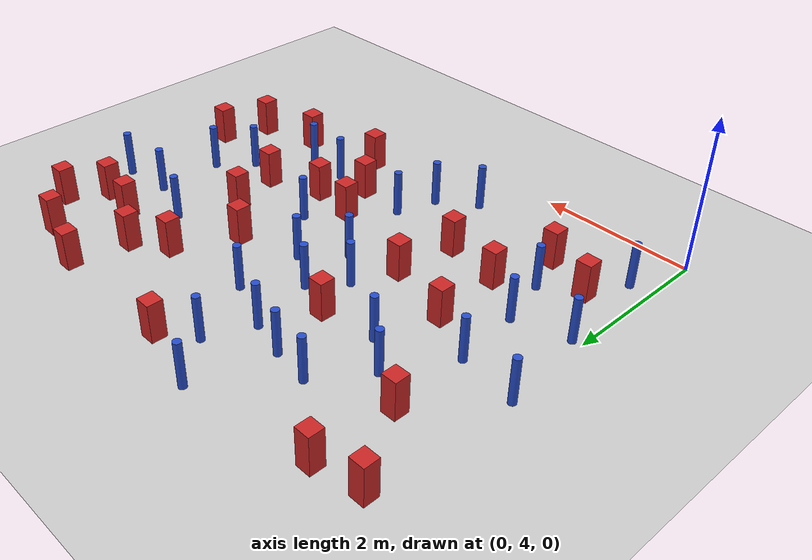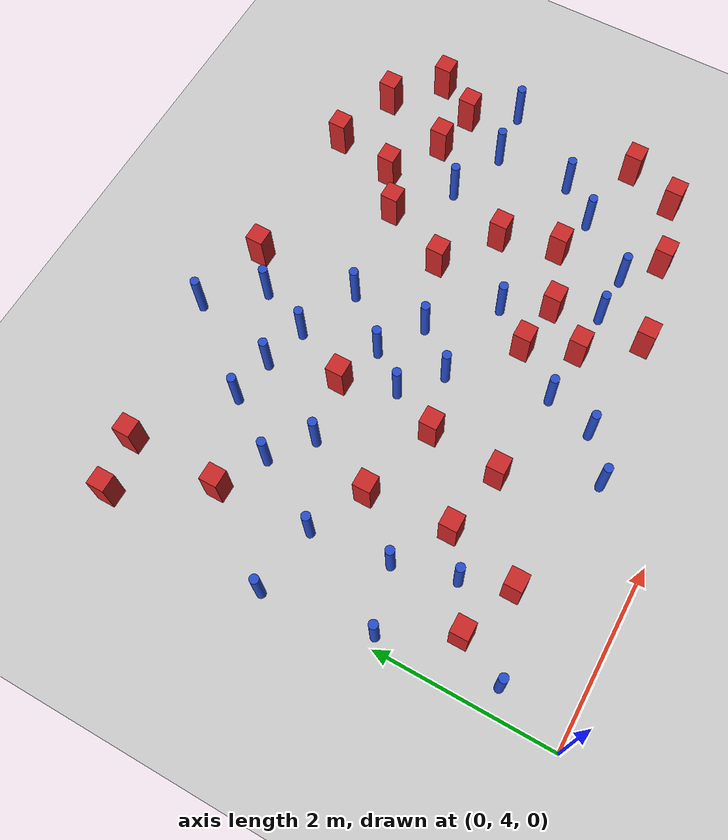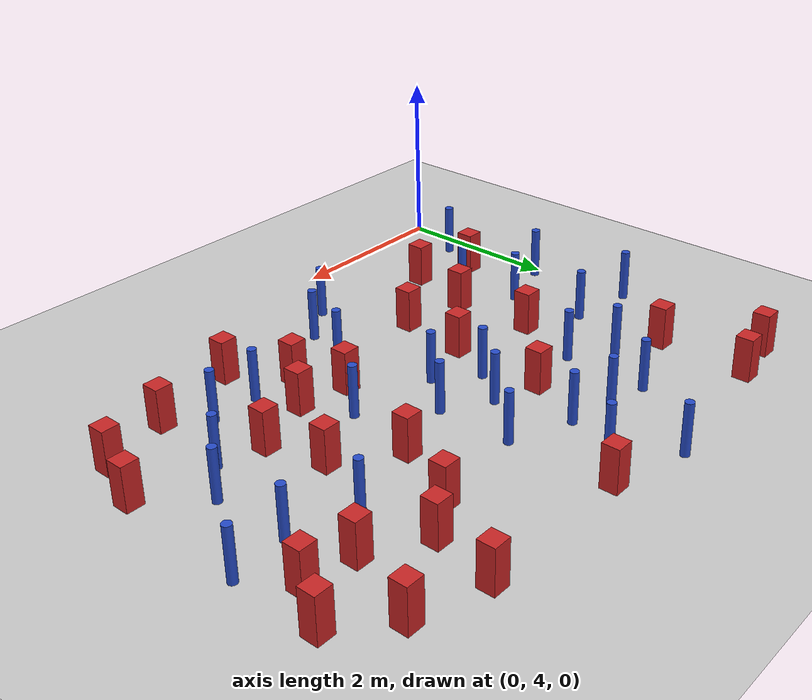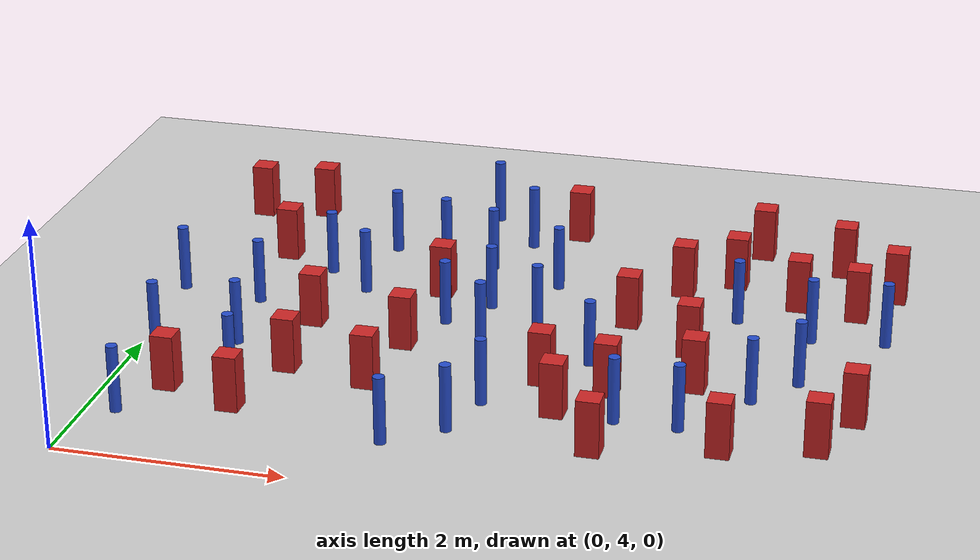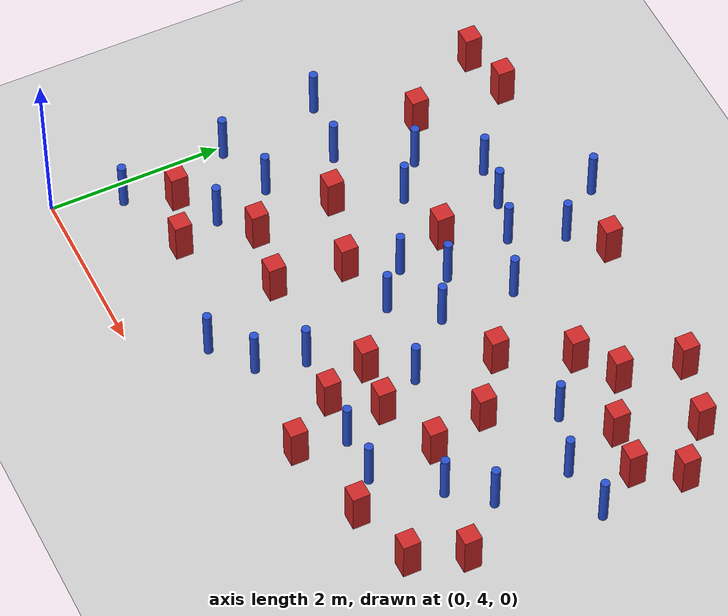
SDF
<sdf version="1.6">
 <world name="default">
  <model name="ground_plane">
   <static>1</static>
   <link name="link">
    <collision name="collision">
     <geometry><plane><normal>0 0 1</normal><size>100 100</size></plane></geometry>
     <surface><friction><ode><mu>100</mu><mu2>50</mu2></ode></friction></surface>
    </collision>
    <visual name="visual">
     <cast_shadows>0</cast_shadows>
     <geometry><plane><normal>0 0 1</normal><size>100 100</size></plane></geometry>
     <material>
      <ambient>1.0 1.0 1.0 1.0</ambient>
      <diffuse>0.8 0.8 0.8 1.0</diffuse>
      <specular>0.01 0.01 0.01 1.000000</specular>
     </material>
    </visual>
   </link>
  </model>
  <model name="square_post_obstacle1">
   <static>true</static>
   <pose>4.42170343339 8.20966445941 -6.11067671241e-07 -5.50515727128e-06 -8.79689657224e-07 2.37013304536e-05</pose>
   <link name="link">
    <pose>0 0 0.25 0 -0 0</pose>
    <inertial>
     <mass>100</mass>
     <inertia>
      <ixx>0.166667</ixx>
      <ixy>0</ixy>
      <ixz>0</ixz>
      <iyy>0.166667</iyy>
      <iyz>0</iyz>
      <izz>0.166667</izz>
     </inertia>
    </inertial>
    <collision name="collision"><geometry><box><size>.2 .2 .5</size></box></geometry></collision>
    <visual name="visual">
     <geometry><box><size>.2 .2 .5</size></box></geometry>
     <material>
      <script><name>Gazebo/Red</name><uri>file://media/materials/scripts/gazebo.material</uri></script>
     </material>
    </visual>
   </link>
  </model>
  <model name="square_post_obstacle2">
   <static>true</static>
   <pose>6.01994694953 8.0531341811 -6.11067671241e-07 -5.50515727128e-06 -8.79689657224e-07 2.37013304536e-05</pose>
   <link name="link">
    <pose>0 0 0.25 0 -0 0</pose>
    <inertial>
     <mass>100</mass>
     <inertia>
      <ixx>0.166667</ixx>
      <ixy>0</ixy>
      <ixz>0</ixz>
      <iyy>0.166667</iyy>
      <iyz>0</iyz>
      <izz>0.166667</izz>
     </inertia>
    </inertial>
    <collision name="collision"><geometry><box><size>.2 .2 .5</size></box></geometry></collision>
    <visual name="visual">
     <geometry><box><size>.2 .2 .5</size></box></geometry>
     <material>
      <script><name>Gazebo/Red</name><uri>file://media/materials/scripts/gazebo.material</uri></script>
     </material>
    </visual>
   </link>
  </model>
  <model name="square_post_obstacle13">
   <static>true</static>
   <pose>0.653260003176 8.16057962834 -6.11067671241e-07 -5.50515727128e-06 -8.79689657224e-07 2.37013304536e-05</pose>
   <link name="link">
    <pose>0 0 0.25 0 -0 0</pose>
    <inertial>
     <mass>100</mass>
     <inertia>
      <ixx>0.166667</ixx>
      <ixy>0</ixy>
      <ixz>0</ixz>
      <iyy>0.166667</iyy>
      <iyz>0</iyz>
      <izz>0.166667</izz>
     </inertia>
    </inertial>
    <collision name="collision"><geometry><box><size>.2 .2 .5</size></box></geometry></collision>
    <visual name="visual">
     <geometry><box><size>.2 .2 .5</size></box></geometry>
     <material>
      <script><name>Gazebo/Red</name><uri>file://media/materials/scripts/gazebo.material</uri></script>
     </material>
    </visual>
   </link>
  </model>
  <model name="pole_obstacle12">
   <static>true</static>
   <pose>3.17359752817 5.62223847648 -9.47619616065e-06 5.49618799738e-07 2.3631041406e-07 -1.55090534801e-07</pose>
   <link name="link">
    <pose>0 0 0.3 0 -0 0</pose>
    <inertial>
     <mass>1</mass>
     <inertia><ixx>0.145833</ixx><ixy>0</ixy><ixz>0</ixz><iyy>0.145833</iyy><iyz>0</iyz><izz>0.125</izz></inertia>
    </inertial>
    <collision name="collision">
     <geometry><cylinder><radius>0.05</radius><length>.6</length></cylinder></geometry>
    </collision>
    <visual name="visual">
     <geometry><cylinder><radius>0.05</radius><length>.6</length></cylinder></geometry>
     <material>
      <script><name>Gazebo/Blue</name><uri>file://media/materials/scripts/gazebo.material</uri></script>
     </material>
    </visual>
   </link>
  </model>
  <model name="pole_obstacle13">
   <static>true</static>
   <pose>0.804186072781 6.23391426051 -9.47619616065e-06 5.49618799737e-07 2.36310414065e-07 -1.55090534796e-07</pose>
   <link name="link">
    <pose>0 0 0.3 0 -0 0</pose>
    <inertial>
     <mass>1</mass>
     <inertia><ixx>0.145833</ixx><ixy>0</ixy><ixz>0</ixz><iyy>0.145833</iyy><iyz>0</iyz><izz>0.125</izz></inertia>
    </inertial>
    <collision name="collision">
     <geometry><cylinder><radius>0.05</radius><length>.6</length></cylinder></geometry>
    </collision>
    <visual name="visual">
     <geometry><cylinder><radius>0.05</radius><length>.6</length></cylinder></geometry>
     <material>
      <script><name>Gazebo/Blue</name><uri>file://media/materials/scripts/gazebo.material</uri></script>
     </material>
    </visual>
   </link>
  </model>
  <model name="square_post_obstacle25">
   <static>true</static>
   <pose>5.0078383888 9.22539712118 -6.11067671241e-07 -5.50515727128e-06 -8.79689657224e-07 2.37013304536e-05</pose>
   <link name="link">
    <pose>0 0 0.25 0 -0 0</pose>
    <inertial>
     <mass>100</mass>
     <inertia>
      <ixx>0.166667</ixx>
      <ixy>0</ixy>
      <ixz>0</ixz>
      <iyy>0.166667</iyy>
      <iyz>0</iyz>
      <izz>0.166667</izz>
     </inertia>
    </inertial>
    <collision name="collision"><geometry><box><size>.2 .2 .5</size></box></geometry></collision>
    <visual name="visual">
     <geometry><box><size>.2 .2 .5</size></box></geometry>
     <material>
      <script><name>Gazebo/Red</name><uri>file://media/materials/scripts/gazebo.material</uri></script>
     </material>
    </visual>
   </link>
  </model>
  <model name="square_post_obstacle30">
   <static>true</static>
   <pose>6.23661159585 6.02981420961 -6.11067671241e-07 -5.50515727128e-06 -8.79689657224e-07 2.37013304536e-05</pose>
   <link name="link">
    <pose>0 0 0.25 0 -0 0</pose>
    <inertial>
     <mass>100</mass>
     <inertia>
      <ixx>0.166667</ixx>
      <ixy>0</ixy>
      <ixz>0</ixz>
      <iyy>0.166667</iyy>
      <iyz>0</iyz>
      <izz>0.166667</izz>
     </inertia>
    </inertial>
    <collision name="collision"><geometry><box><size>.2 .2 .5</size></box></geometry></collision>
    <visual name="visual">
     <geometry><box><size>.2 .2 .5</size></box></geometry>
     <material>
      <script><name>Gazebo/Red</name><uri>file://media/materials/scripts/gazebo.material</uri></script>
     </material>
    </visual>
   </link>
  </model>
  <model name="pole_obstacle20">
   <static>true</static>
   <pose>0.266189733101 4.75550896583 -9.47619616065e-06 5.49618799737e-07 2.36310414067e-07 -1.55090534795e-07</pose>
   <link name="link">
    <pose>0 0 0.3 0 -0 0</pose>
    <inertial>
     <mass>1</mass>
     <inertia><ixx>0.145833</ixx><ixy>0</ixy><ixz>0</ixz><iyy>0.145833</iyy><iyz>0</iyz><izz>0.125</izz></inertia>
    </inertial>
    <collision name="collision">
     <geometry><cylinder><radius>0.05</radius><length>.6</length></cylinder></geometry>
    </collision>
    <visual name="visual">
     <geometry><cylinder><radius>0.05</radius><length>.6</length></cylinder></geometry>
     <material>
      <script><name>Gazebo/Blue</name><uri>file://media/materials/scripts/gazebo.material</uri></script>
     </material>
    </visual>
   </link>
  </model>
  <model name="pole_obstacle26">
   <static>true</static>
   <pose>0.708758255709 7.10985268968 -9.47619616065e-06 5.49618799737e-07 2.36310414065e-07 -1.55090534796e-07</pose>
   <link name="link">
    <pose>0 0 0.3 0 -0 0</pose>
    <inertial>
     <mass>1</mass>
     <inertia><ixx>0.145833</ixx><ixy>0</ixy><ixz>0</ixz><iyy>0.145833</iyy><iyz>0</iyz><izz>0.125</izz></inertia>
    </inertial>
    <collision name="collision">
     <geometry><cylinder><radius>0.05</radius><length>.6</length></cylinder></geometry>
    </collision>
    <visual name="visual">
     <geometry><cylinder><radius>0.05</radius><length>.6</length></cylinder></geometry>
     <material>
      <script><name>Gazebo/Blue</name><uri>file://media/materials/scripts/gazebo.material</uri></script>
     </material>
    </visual>
   </link>
  </model>
  <model name="pole_obstacle28">
   <static>true</static>
   <pose>2.83587387371 8.92061249869 -9.4761961606e-06 5.49618799729e-07 2.36310414e-07 -1.55090534824e-07</pose>
   <link name="link">
    <pose>0 0 0.3 0 -0 0</pose>
    <inertial>
     <mass>1</mass>
     <inertia><ixx>0.145833</ixx><ixy>0</ixy><ixz>0</ixz><iyy>0.145833</iyy><iyz>0</iyz><izz>0.125</izz></inertia>
    </inertial>
    <collision name="collision">
     <geometry><cylinder><radius>0.05</radius><length>.6</length></cylinder></geometry>
    </collision>
    <visual name="visual">
     <geometry><cylinder><radius>0.05</radius><length>.6</length></cylinder></geometry>
     <material>
      <script><name>Gazebo/Blue</name><uri>file://media/materials/scripts/gazebo.material</uri></script>
     </material>
    </visual>
   </link>
  </model>
  <model name="pole_obstacle29">
   <static>true</static>
   <pose>3.01667559415 5.08814130238 -9.47619616065e-06 5.49618799738e-07 2.3631041406e-07 -1.55090534801e-07</pose>
   <link name="link">
    <pose>0 0 0.3 0 -0 0</pose>
    <inertial>
     <mass>1</mass>
     <inertia><ixx>0.145833</ixx><ixy>0</ixy><ixz>0</ixz><iyy>0.145833</iyy><iyz>0</iyz><izz>0.125</izz></inertia>
    </inertial>
    <collision name="collision">
     <geometry><cylinder><radius>0.05</radius><length>.6</length></cylinder></geometry>
    </collision>
    <visual name="visual">
     <geometry><cylinder><radius>0.05</radius><length>.6</length></cylinder></geometry>
     <material>
      <script><name>Gazebo/Blue</name><uri>file://media/materials/scripts/gazebo.material</uri></script>
     </material>
    </visual>
   </link>
  </model>
  <model name="pole_obstacle30">
   <static>true</static>
   <pose>2.59084528699 8.32856327838 -9.4761961606e-06 5.49618799729e-07 2.36310414e-07 -1.55090534824e-07</pose>
   <link name="link">
    <pose>0 0 0.3 0 -0 0</pose>
    <inertial>
     <mass>1</mass>
     <inertia><ixx>0.145833</ixx><ixy>0</ixy><ixz>0</ixz><iyy>0.145833</iyy><iyz>0</iyz><izz>0.125</izz></inertia>
    </inertial>
    <collision name="collision">
     <geometry><cylinder><radius>0.05</radius><length>.6</length></cylinder></geometry>
    </collision>
    <visual name="visual">
     <geometry><cylinder><radius>0.05</radius><length>.6</length></cylinder></geometry>
     <material>
      <script><name>Gazebo/Blue</name><uri>file://media/materials/scripts/gazebo.material</uri></script>
     </material>
    </visual>
   </link>
  </model>
  <model name="pole_obstacle35">
   <static>true</static>
   <pose>3.28346376553 7.18093398653 -9.47619616065e-06 5.49618799738e-07 2.3631041406e-07 -1.55090534801e-07</pose>
   <link name="link">
    <pose>0 0 0.3 0 -0 0</pose>
    <inertial>
     <mass>1</mass>
     <inertia><ixx>0.145833</ixx><ixy>0</ixy><ixz>0</ixz><iyy>0.145833</iyy><iyz>0</iyz><izz>0.125</izz></inertia>
    </inertial>
    <collision name="collision">
     <geometry><cylinder><radius>0.05</radius><length>.6</length></cylinder></geometry>
    </collision>
    <visual name="visual">
     <geometry><cylinder><radius>0.05</radius><length>.6</length></cylinder></geometry>
     <material>
      <script><name>Gazebo/Blue</name><uri>file://media/materials/scripts/gazebo.material</uri></script>
     </material>
    </visual>
   </link>
  </model>
  <model name="square_post_obstacle39">
   <static>true</static>
   <pose>2.13389853774 5.72635591819 -6.11067671241e-07 -5.50515727128e-06 -8.79689657224e-07 2.37013304536e-05</pose>
   <link name="link">
    <pose>0 0 0.25 0 -0 0</pose>
    <inertial>
     <mass>100</mass>
     <inertia>
      <ixx>0.166667</ixx>
      <ixy>0</ixy>
      <ixz>0</ixz>
      <iyy>0.166667</iyy>
      <iyz>0</iyz>
      <izz>0.166667</izz>
     </inertia>
    </inertial>
    <collision name="collision"><geometry><box><size>.2 .2 .5</size></box></geometry></collision>
    <visual name="visual">
     <geometry><box><size>.2 .2 .5</size></box></geometry>
     <material>
      <script><name>Gazebo/Red</name><uri>file://media/materials/scripts/gazebo.material</uri></script>
     </material>
    </visual>
   </link>
  </model>
  <model name="square_post_obstacle42">
   <static>true</static>
   <pose>3.57118035479 6.13761750591 -6.11067671241e-07 -5.50515727128e-06 -8.79689657224e-07 2.37013304536e-05</pose>
   <link name="link">
    <pose>0 0 0.25 0 -0 0</pose>
    <inertial>
     <mass>100</mass>
     <inertia>
      <ixx>0.166667</ixx>
      <ixy>0</ixy>
      <ixz>0</ixz>
      <iyy>0.166667</iyy>
      <iyz>0</iyz>
      <izz>0.166667</izz>
     </inertia>
    </inertial>
    <collision name="collision"><geometry><box><size>.2 .2 .5</size></box></geometry></collision>
    <visual name="visual">
     <geometry><box><size>.2 .2 .5</size></box></geometry>
     <material>
      <script><name>Gazebo/Red</name><uri>file://media/materials/scripts/gazebo.material</uri></script>
     </material>
    </visual>
   </link>
  </model>
  <model name="square_post_obstacle48">
   <static>true</static>
   <pose>0.0815116910613 9.109824242 -6.11067671241e-07 -5.50515727128e-06 -8.79689657224e-07 2.37013304536e-05</pose>
   <link name="link">
    <pose>0 0 0.25 0 -0 0</pose>
    <inertial>
     <mass>100</mass>
     <inertia>
      <ixx>0.166667</ixx>
      <ixy>0</ixy>
      <ixz>0</ixz>
      <iyy>0.166667</iyy>
      <iyz>0</iyz>
      <izz>0.166667</izz>
     </inertia>
    </inertial>
    <collision name="collision"><geometry><box><size>.2 .2 .5</size></box></geometry></collision>
    <visual name="visual">
     <geometry><box><size>.2 .2 .5</size></box></geometry>
     <material>
      <script><name>Gazebo/Red</name><uri>file://media/materials/scripts/gazebo.material</uri></script>
     </material>
    </visual>
   </link>
  </model>
  <model name="square_post_obstacle50">
   <static>true</static>
   <pose>1.38715881285 5.8652911579 -6.11067671241e-07 -5.50515727128e-06 -8.79689657224e-07 2.37013304536e-05</pose>
   <link name="link">
    <pose>0 0 0.25 0 -0 0</pose>
    <inertial>
     <mass>100</mass>
     <inertia>
      <ixx>0.166667</ixx>
      <ixy>0</ixy>
      <ixz>0</ixz>
      <iyy>0.166667</iyy>
      <iyz>0</iyz>
      <izz>0.166667</izz>
     </inertia>
    </inertial>
    <collision name="collision"><geometry><box><size>.2 .2 .5</size></box></geometry></collision>
    <visual name="visual">
     <geometry><box><size>.2 .2 .5</size></box></geometry>
     <material>
      <script><name>Gazebo/Red</name><uri>file://media/materials/scripts/gazebo.material</uri></script>
     </material>
    </visual>
   </link>
  </model>
  <model name="pole_obstacle57">
   <static>true</static>
   <pose>3.27850187263 8.05125117773 -9.4761961606e-06 5.49618799729e-07 2.36310414e-07 -1.55090534824e-07</pose>
   <link name="link">
    <pose>0 0 0.3 0 -0 0</pose>
    <inertial>
     <mass>1</mass>
     <inertia><ixx>0.145833</ixx><ixy>0</ixy><ixz>0</ixz><iyy>0.145833</iyy><iyz>0</iyz><izz>0.125</izz></inertia>
    </inertial>
    <collision name="collision">
     <geometry><cylinder><radius>0.05</radius><length>.6</length></cylinder></geometry>
    </collision>
    <visual name="visual">
     <geometry><cylinder><radius>0.05</radius><length>.6</length></cylinder></geometry>
     <material>
      <script><name>Gazebo/Blue</name><uri>file://media/materials/scripts/gazebo.material</uri></script>
     </material>
    </visual>
   </link>
  </model>
  <model name="square_post_obstacle65">
   <static>true</static>
   <pose>1.16264006123 5.05028360608 -6.11067671241e-07 -5.50515727128e-06 -8.79689657224e-07 2.37013304536e-05</pose>
   <link name="link">
    <pose>0 0 0.25 0 -0 0</pose>
    <inertial>
     <mass>100</mass>
     <inertia>
      <ixx>0.166667</ixx>
      <ixy>0</ixy>
      <ixz>0</ixz>
      <iyy>0.166667</iyy>
      <iyz>0</iyz>
      <izz>0.166667</izz>
     </inertia>
    </inertial>
    <collision name="collision"><geometry><box><size>.2 .2 .5</size></box></geometry></collision>
    <visual name="visual">
     <geometry><box><size>.2 .2 .5</size></box></geometry>
     <material>
      <script><name>Gazebo/Red</name><uri>file://media/materials/scripts/gazebo.material</uri></script>
     </material>
    </visual>
   </link>
  </model>
  <model name="square_post_obstacle70">
   <static>true</static>
   <pose>6.01328946178 5.44240281436 -6.11067671241e-07 -5.50515727128e-06 -8.79689657224e-07 2.37013304536e-05</pose>
   <link name="link">
    <pose>0 0 0.25 0 -0 0</pose>
    <inertial>
     <mass>100</mass>
     <inertia>
      <ixx>0.166667</ixx>
      <ixy>0</ixy>
      <ixz>0</ixz>
      <iyy>0.166667</iyy>
      <iyz>0</iyz>
      <izz>0.166667</izz>
     </inertia>
    </inertial>
    <collision name="collision"><geometry><box><size>.2 .2 .5</size></box></geometry></collision>
    <visual name="visual">
     <geometry><box><size>.2 .2 .5</size></box></geometry>
     <material>
      <script><name>Gazebo/Red</name><uri>file://media/materials/scripts/gazebo.material</uri></script>
     </material>
    </visual>
   </link>
  </model>
  <model name="pole_obstacle76">
   <static>true</static>
   <pose>2.46784365787 7.07686960378 -9.47619616065e-06 5.49618799738e-07 2.3631041406e-07 -1.55090534801e-07</pose>
   <link name="link">
    <pose>0 0 0.3 0 -0 0</pose>
    <inertial>
     <mass>1</mass>
     <inertia><ixx>0.145833</ixx><ixy>0</ixy><ixz>0</ixz><iyy>0.145833</iyy><iyz>0</iyz><izz>0.125</izz></inertia>
    </inertial>
    <collision name="collision">
     <geometry><cylinder><radius>0.05</radius><length>.6</length></cylinder></geometry>
    </collision>
    <visual name="visual">
     <geometry><cylinder><radius>0.05</radius><length>.6</length></cylinder></geometry>
     <material>
      <script><name>Gazebo/Blue</name><uri>file://media/materials/scripts/gazebo.material</uri></script>
     </material>
    </visual>
   </link>
  </model>
  <model name="pole_obstacle77">
   <static>true</static>
   <pose>2.36346654039 9.48029306016 -9.4761961606e-06 5.49618799729e-07 2.36310414e-07 -1.55090534824e-07</pose>
   <link name="link">
    <pose>0 0 0.3 0 -0 0</pose>
    <inertial>
     <mass>1</mass>
     <inertia><ixx>0.145833</ixx><ixy>0</ixy><ixz>0</ixz><iyy>0.145833</iyy><iyz>0</iyz><izz>0.125</izz></inertia>
    </inertial>
    <collision name="collision">
     <geometry><cylinder><radius>0.05</radius><length>.6</length></cylinder></geometry>
    </collision>
    <visual name="visual">
     <geometry><cylinder><radius>0.05</radius><length>.6</length></cylinder></geometry>
     <material>
      <script><name>Gazebo/Blue</name><uri>file://media/materials/scripts/gazebo.material</uri></script>
     </material>
    </visual>
   </link>
  </model>
  <model name="pole_obstacle78">
   <static>true</static>
   <pose>0.118712925427 6.02861134054 -9.47619616065e-06 5.49618799737e-07 2.36310414061e-07 -1.550905348e-07</pose>
   <link name="link">
    <pose>0 0 0.3 0 -0 0</pose>
    <inertial>
     <mass>1</mass>
     <inertia><ixx>0.145833</ixx><ixy>0</ixy><ixz>0</ixz><iyy>0.145833</iyy><iyz>0</iyz><izz>0.125</izz></inertia>
    </inertial>
    <collision name="collision">
     <geometry><cylinder><radius>0.05</radius><length>.6</length></cylinder></geometry>
    </collision>
    <visual name="visual">
     <geometry><cylinder><radius>0.05</radius><length>.6</length></cylinder></geometry>
     <material>
      <script><name>Gazebo/Blue</name><uri>file://media/materials/scripts/gazebo.material</uri></script>
     </material>
    </visual>
   </link>
  </model>
  <model name="square_post_obstacle78">
   <static>true</static>
   <pose>3.23161104398 9.23865303624 -6.11067671241e-07 -5.50515727128e-06 -8.79689657224e-07 2.37013304536e-05</pose>
   <link name="link">
    <pose>0 0 0.25 0 -0 0</pose>
    <inertial>
     <mass>100</mass>
     <inertia>
      <ixx>0.166667</ixx>
      <ixy>0</ixy>
      <ixz>0</ixz>
      <iyy>0.166667</iyy>
      <iyz>0</iyz>
      <izz>0.166667</izz>
     </inertia>
    </inertial>
    <collision name="collision"><geometry><box><size>.2 .2 .5</size></box></geometry></collision>
    <visual name="visual">
     <geometry><box><size>.2 .2 .5</size></box></geometry>
     <material>
      <script><name>Gazebo/Red</name><uri>file://media/materials/scripts/gazebo.material</uri></script>
     </material>
    </visual>
   </link>
  </model>
  <model name="pole_obstacle88">
   <static>true</static>
   <pose>2.55857978694 4.74817105469 -9.47619616065e-06 5.49618799738e-07 2.3631041406e-07 -1.55090534801e-07</pose>
   <link name="link">
    <pose>0 0 0.3 0 -0 0</pose>
    <inertial>
     <mass>1</mass>
     <inertia><ixx>0.145833</ixx><ixy>0</ixy><ixz>0</ixz><iyy>0.145833</iyy><iyz>0</iyz><izz>0.125</izz></inertia>
    </inertial>
    <collision name="collision">
     <geometry><cylinder><radius>0.05</radius><length>.6</length></cylinder></geometry>
    </collision>
    <visual name="visual">
     <geometry><cylinder><radius>0.05</radius><length>.6</length></cylinder></geometry>
     <material>
      <script><name>Gazebo/Blue</name><uri>file://media/materials/scripts/gazebo.material</uri></script>
     </material>
    </visual>
   </link>
  </model>
  <model name="pole_obstacle98">
   <static>true</static>
   <pose>2.78698013193 7.49306694767 -9.47619616065e-06 5.49618799738e-07 2.3631041406e-07 -1.55090534801e-07</pose>
   <link name="link">
    <pose>0 0 0.3 0 -0 0</pose>
    <inertial>
     <mass>1</mass>
     <inertia><ixx>0.145833</ixx><ixy>0</ixy><ixz>0</ixz><iyy>0.145833</iyy><iyz>0</iyz><izz>0.125</izz></inertia>
    </inertial>
    <collision name="collision">
     <geometry><cylinder><radius>0.05</radius><length>.6</length></cylinder></geometry>
    </collision>
    <visual name="visual">
     <geometry><cylinder><radius>0.05</radius><length>.6</length></cylinder></geometry>
     <material>
      <script><name>Gazebo/Blue</name><uri>file://media/materials/scripts/gazebo.material</uri></script>
     </material>
    </visual>
   </link>
  </model>
  <model name="pole_obstacle101">
   <static>true</static>
   <pose>5.68316240243 7.47515483368 -9.47619616065e-06 5.49618799737e-07 2.36310414037e-07 -1.55090534814e-07</pose>
   <link name="link">
    <pose>0 0 0.3 0 -0 0</pose>
    <inertial>
     <mass>1</mass>
     <inertia><ixx>0.145833</ixx><ixy>0</ixy><ixz>0</ixz><iyy>0.145833</iyy><iyz>0</iyz><izz>0.125</izz></inertia>
    </inertial>
    <collision name="collision">
     <geometry><cylinder><radius>0.05</radius><length>.6</length></cylinder></geometry>
    </collision>
    <visual name="visual">
     <geometry><cylinder><radius>0.05</radius><length>.6</length></cylinder></geometry>
     <material>
      <script><name>Gazebo/Blue</name><uri>file://media/materials/scripts/gazebo.material</uri></script>
     </material>
    </visual>
   </link>
  </model>
  <model name="square_post_obstacle96">
   <static>true</static>
   <pose>5.24837639971 5.23577112965 -6.11067671241e-07 -5.50515727128e-06 -8.79689657224e-07 2.37013304536e-05</pose>
   <link name="link">
    <pose>0 0 0.25 0 -0 0</pose>
    <inertial>
     <mass>100</mass>
     <inertia>
      <ixx>0.166667</ixx>
      <ixy>0</ixy>
      <ixz>0</ixz>
      <iyy>0.166667</iyy>
      <iyz>0</iyz>
      <izz>0.166667</izz>
     </inertia>
    </inertial>
    <collision name="collision"><geometry><box><size>.2 .2 .5</size></box></geometry></collision>
    <visual name="visual">
     <geometry><box><size>.2 .2 .5</size></box></geometry>
     <material>
      <script><name>Gazebo/Red</name><uri>file://media/materials/scripts/gazebo.material</uri></script>
     </material>
    </visual>
   </link>
  </model>
  <model name="square_post_obstacle101">
   <static>true</static>
   <pose>0.678214253039 9.22359708743 -6.11067671241e-07 -5.50515727128e-06 -8.79689657224e-07 2.37013304536e-05</pose>
   <link name="link">
    <pose>0 0 0.25 0 -0 0</pose>
    <inertial>
     <mass>100</mass>
     <inertia>
      <ixx>0.166667</ixx>
      <ixy>0</ixy>
      <ixz>0</ixz>
      <iyy>0.166667</iyy>
      <iyz>0</iyz>
      <izz>0.166667</izz>
     </inertia>
    </inertial>
    <collision name="collision"><geometry><box><size>.2 .2 .5</size></box></geometry></collision>
    <visual name="visual">
     <geometry><box><size>.2 .2 .5</size></box></geometry>
     <material>
      <script><name>Gazebo/Red</name><uri>file://media/materials/scripts/gazebo.material</uri></script>
     </material>
    </visual>
   </link>
  </model>
  <model name="square_post_obstacle102">
   <static>true</static>
   <pose>4.85250766172 6.32039008332 -6.11067671241e-07 -5.50515727128e-06 -8.79689657224e-07 2.37013304536e-05</pose>
   <link name="link">
    <pose>0 0 0.25 0 -0 0</pose>
    <inertial>
     <mass>100</mass>
     <inertia>
      <ixx>0.166667</ixx>
      <ixy>0</ixy>
      <ixz>0</ixz>
      <iyy>0.166667</iyy>
      <iyz>0</iyz>
      <izz>0.166667</izz>
     </inertia>
    </inertial>
    <collision name="collision"><geometry><box><size>.2 .2 .5</size></box></geometry></collision>
    <visual name="visual">
     <geometry><box><size>.2 .2 .5</size></box></geometry>
     <material>
      <script><name>Gazebo/Red</name><uri>file://media/materials/scripts/gazebo.material</uri></script>
     </material>
    </visual>
   </link>
  </model>
  <model name="pole_obstacle116">
   <static>true</static>
   <pose>4.31498210817 5.56045213688 -9.47619616065e-06 5.49618799737e-07 2.36310414037e-07 -1.55090534814e-07</pose>
   <link name="link">
    <pose>0 0 0.3 0 -0 0</pose>
    <inertial>
     <mass>1</mass>
     <inertia><ixx>0.145833</ixx><ixy>0</ixy><ixz>0</ixz><iyy>0.145833</iyy><iyz>0</iyz><izz>0.125</izz></inertia>
    </inertial>
    <collision name="collision">
     <geometry><cylinder><radius>0.05</radius><length>.6</length></cylinder></geometry>
    </collision>
    <visual name="visual">
     <geometry><cylinder><radius>0.05</radius><length>.6</length></cylinder></geometry>
     <material>
      <script><name>Gazebo/Blue</name><uri>file://media/materials/scripts/gazebo.material</uri></script>
     </material>
    </visual>
   </link>
  </model>
  <model name="pole_obstacle121">
   <static>true</static>
   <pose>5.69878819207 6.60241591138 -9.47619616065e-06 5.49618799737e-07 2.36310414037e-07 -1.55090534814e-07</pose>
   <link name="link">
    <pose>0 0 0.3 0 -0 0</pose>
    <inertial>
     <mass>1</mass>
     <inertia><ixx>0.145833</ixx><ixy>0</ixy><ixz>0</ixz><iyy>0.145833</iyy><iyz>0</iyz><izz>0.125</izz></inertia>
    </inertial>
    <collision name="collision">
     <geometry><cylinder><radius>0.05</radius><length>.6</length></cylinder></geometry>
    </collision>
    <visual name="visual">
     <geometry><cylinder><radius>0.05</radius><length>.6</length></cylinder></geometry>
     <material>
      <script><name>Gazebo/Blue</name><uri>file://media/materials/scripts/gazebo.material</uri></script>
     </material>
    </visual>
   </link>
  </model>
  <model name="pole_obstacle123">
   <static>true</static>
   <pose>4.99519524789 7.71820377528 -9.47619616065e-06 5.49618799737e-07 2.36310414037e-07 -1.55090534814e-07</pose>
   <link name="link">
    <pose>0 0 0.3 0 -0 0</pose>
    <inertial>
     <mass>1</mass>
     <inertia><ixx>0.145833</ixx><ixy>0</ixy><ixz>0</ixz><iyy>0.145833</iyy><iyz>0</iyz><izz>0.125</izz></inertia>
    </inertial>
    <collision name="collision">
     <geometry><cylinder><radius>0.05</radius><length>.6</length></cylinder></geometry>
    </collision>
    <visual name="visual">
     <geometry><cylinder><radius>0.05</radius><length>.6</length></cylinder></geometry>
     <material>
      <script><name>Gazebo/Blue</name><uri>file://media/materials/scripts/gazebo.material</uri></script>
     </material>
    </visual>
   </link>
  </model>
  <model name="pole_obstacle126">
   <static>true</static>
   <pose>1.15511530847 7.89373780544 -9.47619616065e-06 5.49618799737e-07 2.36310414061e-07 -1.550905348e-07</pose>
   <link name="link">
    <pose>0 0 0.3 0 -0 0</pose>
    <inertial>
     <mass>1</mass>
     <inertia><ixx>0.145833</ixx><ixy>0</ixy><ixz>0</ixz><iyy>0.145833</iyy><iyz>0</iyz><izz>0.125</izz></inertia>
    </inertial>
    <collision name="collision">
     <geometry><cylinder><radius>0.05</radius><length>.6</length></cylinder></geometry>
    </collision>
    <visual name="visual">
     <geometry><cylinder><radius>0.05</radius><length>.6</length></cylinder></geometry>
     <material>
      <script><name>Gazebo/Blue</name><uri>file://media/materials/scripts/gazebo.material</uri></script>
     </material>
    </visual>
   </link>
  </model>
  <model name="pole_obstacle127">
   <static>true</static>
   <pose>-0.0509466908019 7.22104301616 -9.47619616065e-06 5.49618799737e-07 2.36310414066e-07 -1.55090534798e-07</pose>
   <link name="link">
    <pose>0 0 0.3 0 -0 0</pose>
    <inertial>
     <mass>1</mass>
     <inertia><ixx>0.145833</ixx><ixy>0</ixy><ixz>0</ixz><iyy>0.145833</iyy><iyz>0</iyz><izz>0.125</izz></inertia>
    </inertial>
    <collision name="collision">
     <geometry><cylinder><radius>0.05</radius><length>.6</length></cylinder></geometry>
    </collision>
    <visual name="visual">
     <geometry><cylinder><radius>0.05</radius><length>.6</length></cylinder></geometry>
     <material>
      <script><name>Gazebo/Blue</name><uri>file://media/materials/scripts/gazebo.material</uri></script>
     </material>
    </visual>
   </link>
  </model>
  <model name="square_post_obstacle128">
   <static>true</static>
   <pose>5.48007506157 8.14244161002 -6.11067671241e-07 -5.50515727128e-06 -8.79689657224e-07 2.37013304536e-05</pose>
   <link name="link">
    <pose>0 0 0.25 0 -0 0</pose>
    <inertial>
     <mass>100</mass>
     <inertia>
      <ixx>0.166667</ixx>
      <ixy>0</ixy>
      <ixz>0</ixz>
      <iyy>0.166667</iyy>
      <iyz>0</iyz>
      <izz>0.166667</izz>
     </inertia>
    </inertial>
    <collision name="collision"><geometry><box><size>.2 .2 .5</size></box></geometry></collision>
    <visual name="visual">
     <geometry><box><size>.2 .2 .5</size></box></geometry>
     <material>
      <script><name>Gazebo/Red</name><uri>file://media/materials/scripts/gazebo.material</uri></script>
     </material>
    </visual>
   </link>
  </model>
  <model name="square_post_obstacle132">
   <static>true</static>
   <pose>6.313105862 8.52774284076 -6.11067671241e-07 -5.50515727128e-06 -8.79689657224e-07 2.37013304536e-05</pose>
   <link name="link">
    <pose>0 0 0.25 0 -0 0</pose>
    <inertial>
     <mass>100</mass>
     <inertia>
      <ixx>0.166667</ixx>
      <ixy>0</ixy>
      <ixz>0</ixz>
      <iyy>0.166667</iyy>
      <iyz>0</iyz>
      <izz>0.166667</izz>
     </inertia>
    </inertial>
    <collision name="collision"><geometry><box><size>.2 .2 .5</size></box></geometry></collision>
    <visual name="visual">
     <geometry><box><size>.2 .2 .5</size></box></geometry>
     <material>
      <script><name>Gazebo/Red</name><uri>file://media/materials/scripts/gazebo.material</uri></script>
     </material>
    </visual>
   </link>
  </model>
  <model name="pole_obstacle153">
   <static>true</static>
   <pose>2.09790568351 8.46077532457 -9.4761961606e-06 5.49618799729e-07 2.36310414e-07 -1.55090534824e-07</pose>
   <link name="link">
    <pose>0 0 0.3 0 -0 0</pose>
    <inertial>
     <mass>1</mass>
     <inertia><ixx>0.145833</ixx><ixy>0</ixy><ixz>0</ixz><iyy>0.145833</iyy><iyz>0</iyz><izz>0.125</izz></inertia>
    </inertial>
    <collision name="collision">
     <geometry><cylinder><radius>0.05</radius><length>.6</length></cylinder></geometry>
    </collision>
    <visual name="visual">
     <geometry><cylinder><radius>0.05</radius><length>.6</length></cylinder></geometry>
     <material>
      <script><name>Gazebo/Blue</name><uri>file://media/materials/scripts/gazebo.material</uri></script>
     </material>
    </visual>
   </link>
  </model>
  <model name="square_post_obstacle148">
   <static>true</static>
   <pose>2.22968302865 6.540566121 -6.11067671241e-07 -5.50515727128e-06 -8.79689657224e-07 2.37013304536e-05</pose>
   <link name="link">
    <pose>0 0 0.25 0 -0 0</pose>
    <inertial>
     <mass>100</mass>
     <inertia>
      <ixx>0.166667</ixx>
      <ixy>0</ixy>
      <ixz>0</ixz>
      <iyy>0.166667</iyy>
      <iyz>0</iyz>
      <izz>0.166667</izz>
     </inertia>
    </inertial>
    <collision name="collision"><geometry><box><size>.2 .2 .5</size></box></geometry></collision>
    <visual name="visual">
     <geometry><box><size>.2 .2 .5</size></box></geometry>
     <material>
      <script><name>Gazebo/Red</name><uri>file://media/materials/scripts/gazebo.material</uri></script>
     </material>
    </visual>
   </link>
  </model>
  <model name="square_post_obstacle152">
   <static>true</static>
   <pose>5.79060928202 8.99060219304 -6.11067671241e-07 -5.50515727128e-06 -8.79689657224e-07 2.37013304536e-05</pose>
   <link name="link">
    <pose>0 0 0.25 0 -0 0</pose>
    <inertial>
     <mass>100</mass>
     <inertia>
      <ixx>0.166667</ixx>
      <ixy>0</ixy>
      <ixz>0</ixz>
      <iyy>0.166667</iyy>
      <iyz>0</iyz>
      <izz>0.166667</izz>
     </inertia>
    </inertial>
    <collision name="collision"><geometry><box><size>.2 .2 .5</size></box></geometry></collision>
    <visual name="visual">
     <geometry><box><size>.2 .2 .5</size></box></geometry>
     <material>
      <script><name>Gazebo/Red</name><uri>file://media/materials/scripts/gazebo.material</uri></script>
     </material>
    </visual>
   </link>
  </model>
  <model name="square_post_obstacle153">
   <static>true</static>
   <pose>4.23473016811 5.00371082714 -6.11067671241e-07 -5.50515727128e-06 -8.79689657224e-07 2.37013304536e-05</pose>
   <link name="link">
    <pose>0 0 0.25 0 -0 0</pose>
    <inertial>
     <mass>100</mass>
     <inertia>
      <ixx>0.166667</ixx>
      <ixy>0</ixy>
      <ixz>0</ixz>
      <iyy>0.166667</iyy>
      <iyz>0</iyz>
      <izz>0.166667</izz>
     </inertia>
    </inertial>
    <collision name="collision"><geometry><box><size>.2 .2 .5</size></box></geometry></collision>
    <visual name="visual">
     <geometry><box><size>.2 .2 .5</size></box></geometry>
     <material>
      <script><name>Gazebo/Red</name><uri>file://media/materials/scripts/gazebo.material</uri></script>
     </material>
    </visual>
   </link>
  </model>
  <model name="square_post_obstacle154">
   <static>true</static>
   <pose>3.80028706592 5.59133257499 -6.11067671241e-07 -5.50515727128e-06 -8.79689657224e-07 2.37013304536e-05</pose>
   <link name="link">
    <pose>0 0 0.25 0 -0 0</pose>
    <inertial>
     <mass>100</mass>
     <inertia>
      <ixx>0.166667</ixx>
      <ixy>0</ixy>
      <ixz>0</ixz>
      <iyy>0.166667</iyy>
      <iyz>0</iyz>
      <izz>0.166667</izz>
     </inertia>
    </inertial>
    <collision name="collision"><geometry><box><size>.2 .2 .5</size></box></geometry></collision>
    <visual name="visual">
     <geometry><box><size>.2 .2 .5</size></box></geometry>
     <material>
      <script><name>Gazebo/Red</name><uri>file://media/materials/scripts/gazebo.material</uri></script>
     </material>
    </visual>
   </link>
  </model>
  <model name="pole_obstacle164">
   <static>true</static>
   <pose>0.979784507641 5.56735596801 -9.47619616065e-06 5.49618799737e-07 2.36310414071e-07 -1.55090534793e-07</pose>
   <link name="link">
    <pose>0 0 0.3 0 -0 0</pose>
    <inertial>
     <mass>1</mass>
     <inertia><ixx>0.145833</ixx><ixy>0</ixy><ixz>0</ixz><iyy>0.145833</iyy><iyz>0</iyz><izz>0.125</izz></inertia>
    </inertial>
    <collision name="collision">
     <geometry><cylinder><radius>0.05</radius><length>.6</length></cylinder></geometry>
    </collision>
    <visual name="visual">
     <geometry><cylinder><radius>0.05</radius><length>.6</length></cylinder></geometry>
     <material>
      <script><name>Gazebo/Blue</name><uri>file://media/materials/scripts/gazebo.material</uri></script>
     </material>
    </visual>
   </link>
  </model>
  <model name="pole_obstacle166">
   <static>true</static>
   <pose>4.85577623318 5.5522824253 -9.47619616065e-06 5.49618799737e-07 2.36310414037e-07 -1.55090534814e-07</pose>
   <link name="link">
    <pose>0 0 0.3 0 -0 0</pose>
    <inertial>
     <mass>1</mass>
     <inertia><ixx>0.145833</ixx><ixy>0</ixy><ixz>0</ixz><iyy>0.145833</iyy><iyz>0</iyz><izz>0.125</izz></inertia>
    </inertial>
    <collision name="collision">
     <geometry><cylinder><radius>0.05</radius><length>.6</length></cylinder></geometry>
    </collision>
    <visual name="visual">
     <geometry><cylinder><radius>0.05</radius><length>.6</length></cylinder></geometry>
     <material>
      <script><name>Gazebo/Blue</name><uri>file://media/materials/scripts/gazebo.material</uri></script>
     </material>
    </visual>
   </link>
  </model>
  <model name="pole_obstacle169">
   <static>true</static>
   <pose>3.89278256673 6.56558909785 -9.47619616065e-06 5.49618799738e-07 2.3631041406e-07 -1.55090534801e-07</pose>
   <link name="link">
    <pose>0 0 0.3 0 -0 0</pose>
    <inertial>
     <mass>1</mass>
     <inertia><ixx>0.145833</ixx><ixy>0</ixy><ixz>0</ixz><iyy>0.145833</iyy><iyz>0</iyz><izz>0.125</izz></inertia>
    </inertial>
    <collision name="collision">
     <geometry><cylinder><radius>0.05</radius><length>.6</length></cylinder></geometry>
    </collision>
    <visual name="visual">
     <geometry><cylinder><radius>0.05</radius><length>.6</length></cylinder></geometry>
     <material>
      <script><name>Gazebo/Blue</name><uri>file://media/materials/scripts/gazebo.material</uri></script>
     </material>
    </visual>
   </link>
  </model>
  <model name="square_post_obstacle163">
   <static>true</static>
   <pose>4.86480310651 8.50086077905 -6.11067671241e-07 -5.50515727128e-06 -8.79689657224e-07 2.37013304536e-05</pose>
   <link name="link">
    <pose>0 0 0.25 0 -0 0</pose>
    <inertial>
     <mass>100</mass>
     <inertia>
      <ixx>0.166667</ixx>
      <ixy>0</ixy>
      <ixz>0</ixz>
      <iyy>0.166667</iyy>
      <iyz>0</iyz>
      <izz>0.166667</izz>
     </inertia>
    </inertial>
    <collision name="collision"><geometry><box><size>.2 .2 .5</size></box></geometry></collision>
    <visual name="visual">
     <geometry><box><size>.2 .2 .5</size></box></geometry>
     <material>
      <script><name>Gazebo/Red</name><uri>file://media/materials/scripts/gazebo.material</uri></script>
     </material>
    </visual>
   </link>
  </model>
  <model name="square_post_obstacle166">
   <static>true</static>
   <pose>4.06168512524 7.43825158658 -6.11067671241e-07 -5.50515727128e-06 -8.79689657224e-07 2.37013304536e-05</pose>
   <link name="link">
    <pose>0 0 0.25 0 -0 0</pose>
    <inertial>
     <mass>100</mass>
     <inertia>
      <ixx>0.166667</ixx>
      <ixy>0</ixy>
      <ixz>0</ixz>
      <iyy>0.166667</iyy>
      <iyz>0</iyz>
      <izz>0.166667</izz>
     </inertia>
    </inertial>
    <collision name="collision"><geometry><box><size>.2 .2 .5</size></box></geometry></collision>
    <visual name="visual">
     <geometry><box><size>.2 .2 .5</size></box></geometry>
     <material>
      <script><name>Gazebo/Red</name><uri>file://media/materials/scripts/gazebo.material</uri></script>
     </material>
    </visual>
   </link>
  </model>
  <model name="square_post_obstacle171">
   <static>true</static>
   <pose>0.517464628566 5.29130684563 -6.11067671241e-07 -5.50515727128e-06 -8.79689657224e-07 2.37013304536e-05</pose>
   <link name="link">
    <pose>0 0 0.25 0 -0 0</pose>
    <inertial>
     <mass>100</mass>
     <inertia>
      <ixx>0.166667</ixx>
      <ixy>0</ixy>
      <ixz>0</ixz>
      <iyy>0.166667</iyy>
      <iyz>0</iyz>
      <izz>0.166667</izz>
     </inertia>
    </inertial>
    <collision name="collision"><geometry><box><size>.2 .2 .5</size></box></geometry></collision>
    <visual name="visual">
     <geometry><box><size>.2 .2 .5</size></box></geometry>
     <material>
      <script><name>Gazebo/Red</name><uri>file://media/materials/scripts/gazebo.material</uri></script>
     </material>
    </visual>
   </link>
  </model>
  <model name="square_post_obstacle175">
   <static>true</static>
   <pose>2.28400723893 7.67109729756 -6.11067671241e-07 -5.50515727128e-06 -8.79689657224e-07 2.37013304536e-05</pose>
   <link name="link">
    <pose>0 0 0.25 0 -0 0</pose>
    <inertial>
     <mass>100</mass>
     <inertia>
      <ixx>0.166667</ixx>
      <ixy>0</ixy>
      <ixz>0</ixz>
      <iyy>0.166667</iyy>
      <iyz>0</iyz>
      <izz>0.166667</izz>
     </inertia>
    </inertial>
    <collision name="collision"><geometry><box><size>.2 .2 .5</size></box></geometry></collision>
    <visual name="visual">
     <geometry><box><size>.2 .2 .5</size></box></geometry>
     <material>
      <script><name>Gazebo/Red</name><uri>file://media/materials/scripts/gazebo.material</uri></script>
     </material>
    </visual>
   </link>
  </model>
  <model name="square_post_obstacle176">
   <static>true</static>
   <pose>4.1540808065 6.06087374211 -6.11067671241e-07 -5.50515727128e-06 -8.79689657224e-07 2.37013304536e-05</pose>
   <link name="link">
    <pose>0 0 0.25 0 -0 0</pose>
    <inertial>
     <mass>100</mass>
     <inertia>
      <ixx>0.166667</ixx>
      <ixy>0</ixy>
      <ixz>0</ixz>
      <iyy>0.166667</iyy>
      <iyz>0</iyz>
      <izz>0.166667</izz>
     </inertia>
    </inertial>
    <collision name="collision"><geometry><box><size>.2 .2 .5</size></box></geometry></collision>
    <visual name="visual">
     <geometry><box><size>.2 .2 .5</size></box></geometry>
     <material>
      <script><name>Gazebo/Red</name><uri>file://media/materials/scripts/gazebo.material</uri></script>
     </material>
    </visual>
   </link>
  </model>
  <model name="square_post_obstacle199">
   <static>true</static>
   <pose>1.32745275278 6.80080398115 -6.11067671241e-07 -5.50515727128e-06 -8.79689657224e-07 2.37013304536e-05</pose>
   <link name="link">
    <pose>0 0 0.25 0 -0 0</pose>
    <inertial>
     <mass>100</mass>
     <inertia>
      <ixx>0.166667</ixx>
      <ixy>0</ixy>
      <ixz>0</ixz>
      <iyy>0.166667</iyy>
      <iyz>0</iyz>
      <izz>0.166667</izz>
     </inertia>
    </inertial>
    <collision name="collision"><geometry><box><size>.2 .2 .5</size></box></geometry></collision>
    <visual name="visual">
     <geometry><box><size>.2 .2 .5</size></box></geometry>
     <material>
      <script><name>Gazebo/Red</name><uri>file://media/materials/scripts/gazebo.material</uri></script>
     </material>
    </visual>
   </link>
  </model>
  <model name="pole_obstacle188">
   <static>true</static>
   <pose>2.88442134095 6.71849665513 -9.47619616065e-06 5.49618799738e-07 2.3631041406e-07 -1.55090534801e-07</pose>
   <link name="link">
    <pose>0 0 0.3 0 -0 0</pose>
    <inertial>
     <mass>1</mass>
     <inertia><ixx>0.145833</ixx><ixy>0</ixy><ixz>0</ixz><iyy>0.145833</iyy><iyz>0</iyz><izz>0.125</izz></inertia>
    </inertial>
    <collision name="collision">
     <geometry><cylinder><radius>0.05</radius><length>.6</length></cylinder></geometry>
    </collision>
    <visual name="visual">
     <geometry><cylinder><radius>0.05</radius><length>.6</length></cylinder></geometry>
     <material>
      <script><name>Gazebo/Blue</name><uri>file://media/materials/scripts/gazebo.material</uri></script>
     </material>
    </visual>
   </link>
  </model>
  <model name="pole_obstacle189">
   <static>true</static>
   <pose>1.59977424708 8.53079918931 -9.47619616065e-06 5.49618799737e-07 2.36310414046e-07 -1.55090534809e-07</pose>
   <link name="link">
    <pose>0 0 0.3 0 -0 0</pose>
    <inertial>
     <mass>1</mass>
     <inertia><ixx>0.145833</ixx><ixy>0</ixy><ixz>0</ixz><iyy>0.145833</iyy><iyz>0</iyz><izz>0.125</izz></inertia>
    </inertial>
    <collision name="collision">
     <geometry><cylinder><radius>0.05</radius><length>.6</length></cylinder></geometry>
    </collision>
    <visual name="visual">
     <geometry><cylinder><radius>0.05</radius><length>.6</length></cylinder></geometry>
     <material>
      <script><name>Gazebo/Blue</name><uri>file://media/materials/scripts/gazebo.material</uri></script>
     </material>
    </visual>
   </link>
  </model>
  <model name="pole_obstacle199">
   <static>true</static>
   <pose>6.32796715839 7.54400050999 -9.47619616065e-06 5.49618799737e-07 2.36310414037e-07 -1.55090534814e-07</pose>
   <link name="link">
    <pose>0 0 0.3 0 -0 0</pose>
    <inertial>
     <mass>1</mass>
     <inertia><ixx>0.145833</ixx><ixy>0</ixy><ixz>0</ixz><iyy>0.145833</iyy><iyz>0</iyz><izz>0.125</izz></inertia>
    </inertial>
    <collision name="collision">
     <geometry><cylinder><radius>0.05</radius><length>.6</length></cylinder></geometry>
    </collision>
    <visual name="visual">
     <geometry><cylinder><radius>0.05</radius><length>.6</length></cylinder></geometry>
     <material>
      <script><name>Gazebo/Blue</name><uri>file://media/materials/scripts/gazebo.material</uri></script>
     </material>
    </visual>
   </link>
  </model>
  <model name="pole_obstacle203">
   <static>true</static>
   <pose>5.35458647117 6.18894911359 -9.47619616065e-06 5.49618799737e-07 2.36310414037e-07 -1.55090534814e-07</pose>
   <link name="link">
    <pose>0 0 0.3 0 -0 0</pose>
    <inertial>
     <mass>1</mass>
     <inertia><ixx>0.145833</ixx><ixy>0</ixy><ixz>0</ixz><iyy>0.145833</iyy><iyz>0</iyz><izz>0.125</izz></inertia>
    </inertial>
    <collision name="collision">
     <geometry><cylinder><radius>0.05</radius><length>.6</length></cylinder></geometry>
    </collision>
    <visual name="visual">
     <geometry><cylinder><radius>0.05</radius><length>.6</length></cylinder></geometry>
     <material>
      <script><name>Gazebo/Blue</name><uri>file://media/materials/scripts/gazebo.material</uri></script>
     </material>
    </visual>
   </link>
  </model>
  <model name="pole_obstacle212">
   <static>true</static>
   <pose>1.58157543748 7.55598978216 -9.47619616065e-06 5.49618799737e-07 2.36310414061e-07 -1.550905348e-07</pose>
   <link name="link">
    <pose>0 0 0.3 0 -0 0</pose>
    <inertial>
     <mass>1</mass>
     <inertia><ixx>0.145833</ixx><ixy>0</ixy><ixz>0</ixz><iyy>0.145833</iyy><iyz>0</iyz><izz>0.125</izz></inertia>
    </inertial>
    <collision name="collision">
     <geometry><cylinder><radius>0.05</radius><length>.6</length></cylinder></geometry>
    </collision>
    <visual name="visual">
     <geometry><cylinder><radius>0.05</radius><length>.6</length></cylinder></geometry>
     <material>
      <script><name>Gazebo/Blue</name><uri>file://media/materials/scripts/gazebo.material</uri></script>
     </material>
    </visual>
   </link>
  </model>
  <model name="square_post_obstacle213">
   <static>true</static>
   <pose>4.6902099502 6.97729997688 -6.11067671241e-07 -5.50515727128e-06 -8.79689657224e-07 2.37013304536e-05</pose>
   <link name="link">
    <pose>0 0 0.25 0 -0 0</pose>
    <inertial>
     <mass>100</mass>
     <inertia>
      <ixx>0.166667</ixx>
      <ixy>0</ixy>
      <ixz>0</ixz>
      <iyy>0.166667</iyy>
      <iyz>0</iyz>
      <izz>0.166667</izz>
     </inertia>
    </inertial>
    <collision name="collision"><geometry><box><size>.2 .2 .5</size></box></geometry></collision>
    <visual name="visual">
     <geometry><box><size>.2 .2 .5</size></box></geometry>
     <material>
      <script><name>Gazebo/Red</name><uri>file://media/materials/scripts/gazebo.material</uri></script>
     </material>
    </visual>
   </link>
  </model>
 </world>
</sdf>
